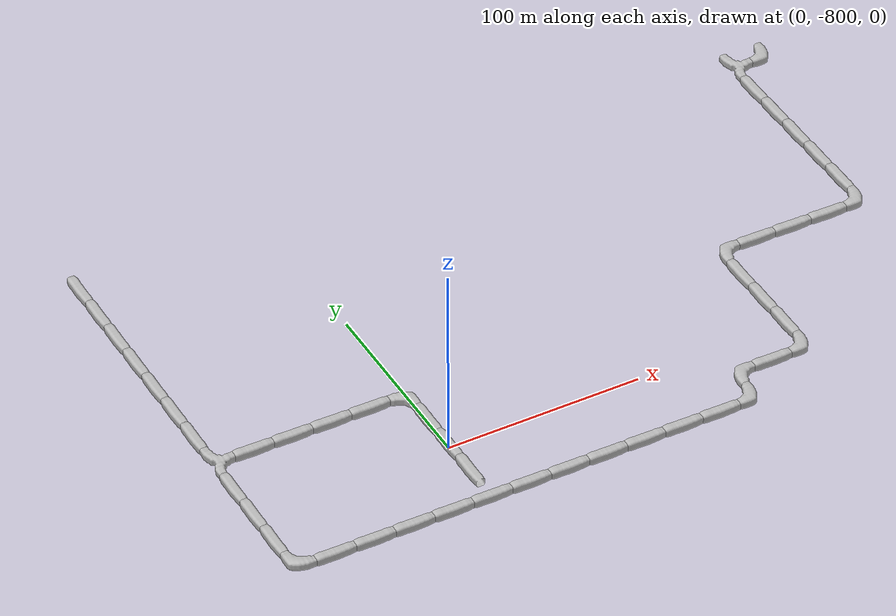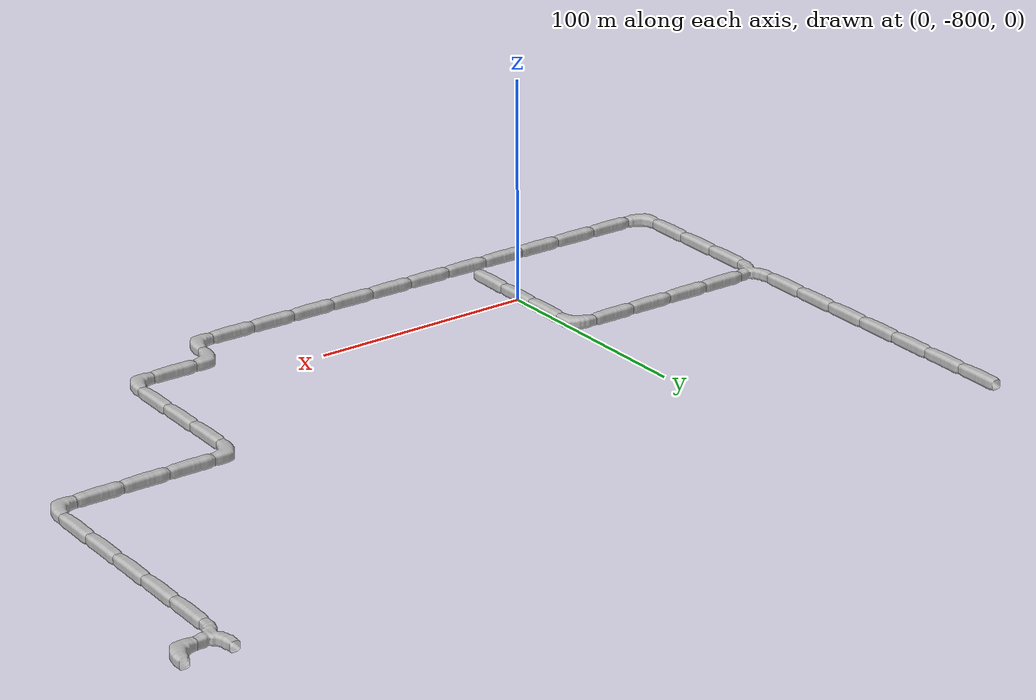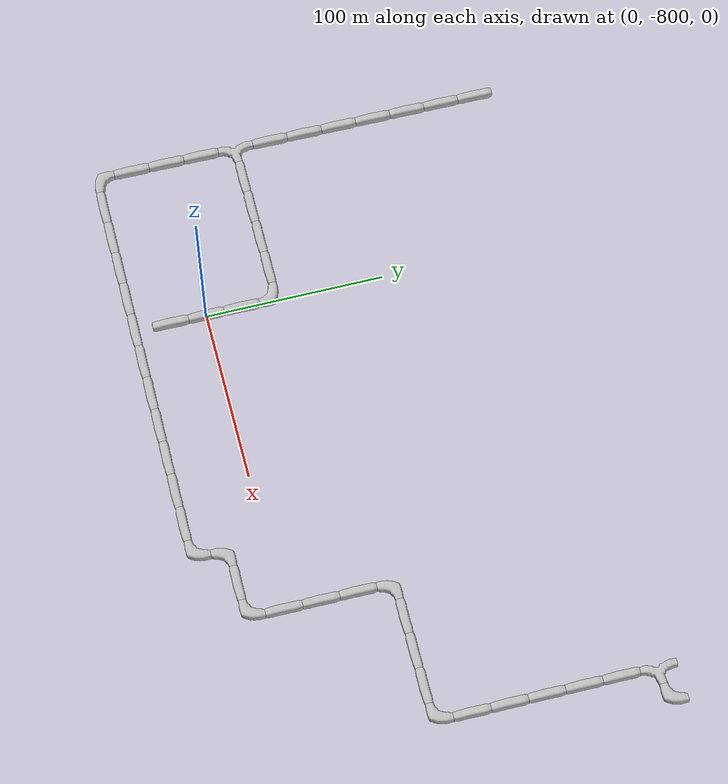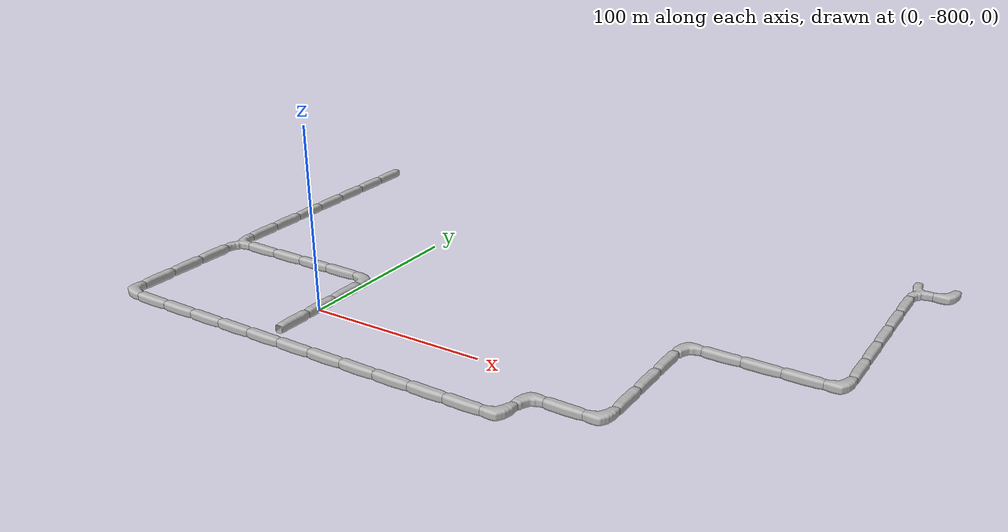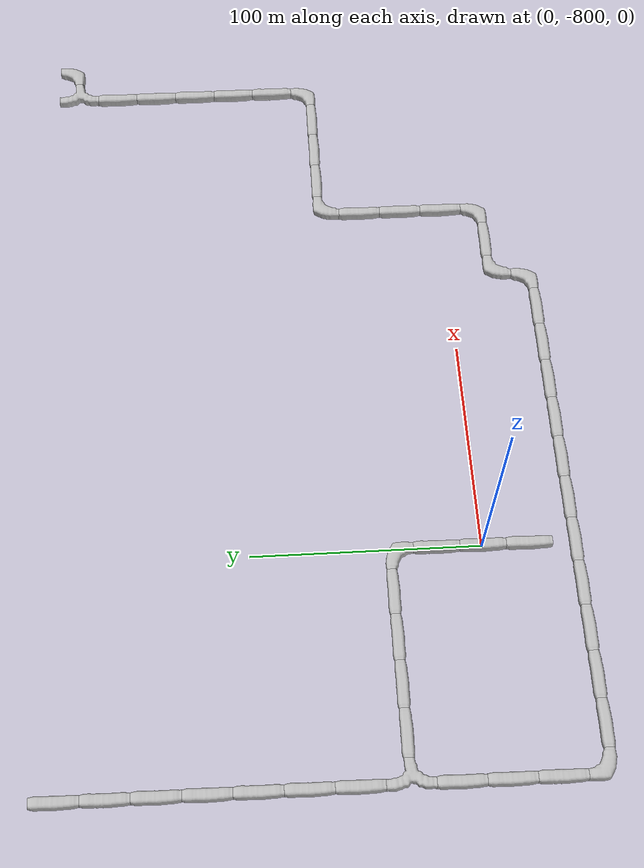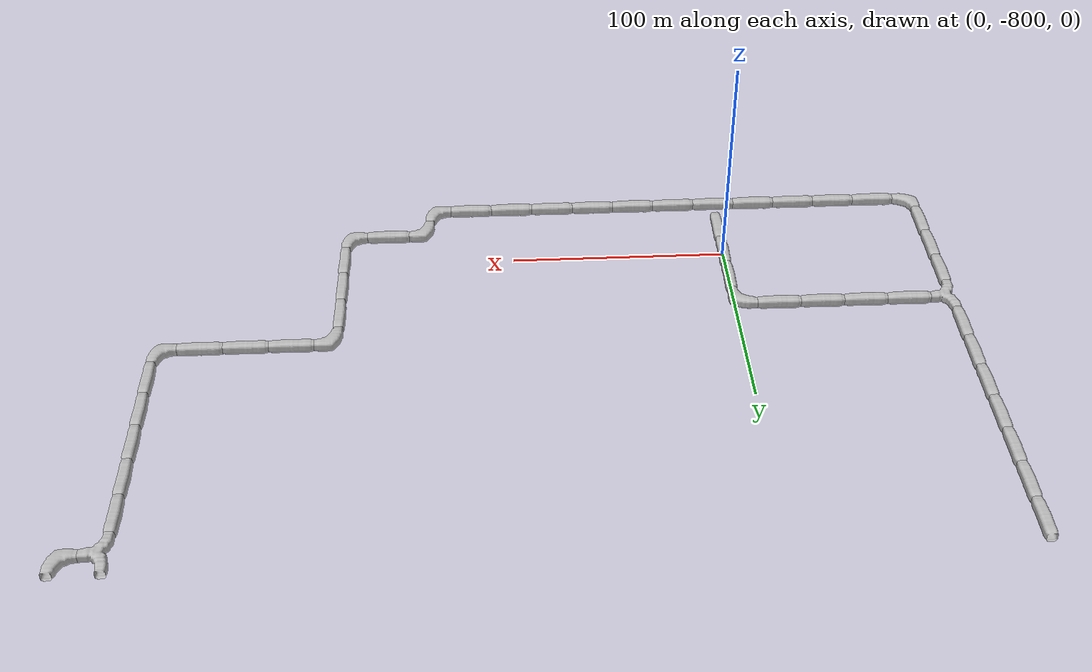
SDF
<sdf version="1.6">
 <world name="cave_8000_32">
  <include>
   <static>true</static>
   <name>cave_13_-31</name>
   <pose>260 -620 0 0 0 -1.5707963267948966</pose>
   <uri>model://cave_3way_20m</uri>
  </include>
  <include>
   <static>true</static>
   <name>cave_14_-31</name>
   <pose>280 -620 0 0 0 1.5707963267948966</pose>
   <uri>model://cave_L_20m</uri>
  </include>
  <include>
   <static>true</static>
   <name>cave_13_-32</name>
   <pose>260 -640 0 0 0 0.0</pose>
   <uri>model://cave_straight_20m</uri>
  </include>
  <include>
   <static>true</static>
   <name>cave_13_-33</name>
   <pose>260 -660 0 0 0 0.0</pose>
   <uri>model://cave_straight_20m</uri>
  </include>
  <include>
   <static>true</static>
   <name>cave_13_-34</name>
   <pose>260 -680 0 0 0 0.0</pose>
   <uri>model://cave_straight_20m</uri>
  </include>
  <include>
   <static>true</static>
   <name>cave_13_-35</name>
   <pose>260 -700 0 0 0 0.0</pose>
   <uri>model://cave_straight_20m</uri>
  </include>
  <include>
   <static>true</static>
   <name>cave_13_-36</name>
   <pose>260 -720 0 0 0 0.0</pose>
   <uri>model://cave_straight_20m</uri>
  </include>
  <include>
   <static>true</static>
   <name>cave_13_-37</name>
   <pose>260 -740 0 0 0 1.5707963267948966</pose>
   <uri>model://cave_L_20m</uri>
  </include>
  <include>
   <static>true</static>
   <name>cave_12_-37</name>
   <pose>240 -740 0 0 0 1.5707963267948966</pose>
   <uri>model://cave_straight_20m</uri>
  </include>
  <include>
   <static>true</static>
   <name>cave_11_-37</name>
   <pose>220 -740 0 0 0 1.5707963267948966</pose>
   <uri>model://cave_straight_20m</uri>
  </include>
  <include>
   <static>true</static>
   <name>cave_10_-37</name>
   <pose>200 -740 0 0 0 1.5707963267948966</pose>
   <uri>model://cave_straight_20m</uri>
  </include>
  <include>
   <static>true</static>
   <name>cave_9_-37</name>
   <pose>180 -740 0 0 0 -1.5707963267948966</pose>
   <uri>model://cave_L_20m</uri>
  </include>
  <include>
   <static>true</static>
   <name>cave_9_-38</name>
   <pose>180 -760 0 0 0 0.0</pose>
   <uri>model://cave_straight_20m</uri>
  </include>
  <include>
   <static>true</static>
   <name>cave_9_-39</name>
   <pose>180 -780 0 0 0 0.0</pose>
   <uri>model://cave_straight_20m</uri>
  </include>
  <include>
   <static>true</static>
   <name>cave_9_-40</name>
   <pose>180 -800 0 0 0 0.0</pose>
   <uri>model://cave_straight_20m</uri>
  </include>
  <include>
   <static>true</static>
   <name>cave_9_-41</name>
   <pose>180 -820 0 0 0 1.5707963267948966</pose>
   <uri>model://cave_L_20m</uri>
  </include>
  <include>
   <static>true</static>
   <name>cave_8_-41</name>
   <pose>160 -820 0 0 0 1.5707963267948966</pose>
   <uri>model://cave_straight_20m</uri>
  </include>
  <include>
   <static>true</static>
   <name>cave_7_-41</name>
   <pose>140 -820 0 0 0 -1.5707963267948966</pose>
   <uri>model://cave_L_20m</uri>
  </include>
  <include>
   <static>true</static>
   <name>cave_7_-42</name>
   <pose>140 -840 0 0 0 1.5707963267948966</pose>
   <uri>model://cave_L_20m</uri>
  </include>
  <include>
   <static>true</static>
   <name>cave_6_-42</name>
   <pose>120 -840 0 0 0 1.5707963267948966</pose>
   <uri>model://cave_straight_20m</uri>
  </include>
  <include>
   <static>true</static>
   <name>cave_5_-42</name>
   <pose>100 -840 0 0 0 1.5707963267948966</pose>
   <uri>model://cave_straight_20m</uri>
  </include>
  <include>
   <static>true</static>
   <name>cave_4_-42</name>
   <pose>80 -840 0 0 0 1.5707963267948966</pose>
   <uri>model://cave_straight_20m</uri>
  </include>
  <include>
   <static>true</static>
   <name>cave_3_-42</name>
   <pose>60 -840 0 0 0 1.5707963267948966</pose>
   <uri>model://cave_straight_20m</uri>
  </include>
  <include>
   <static>true</static>
   <name>cave_2_-42</name>
   <pose>40 -840 0 0 0 1.5707963267948966</pose>
   <uri>model://cave_straight_20m</uri>
  </include>
  <include>
   <static>true</static>
   <name>cave_1_-42</name>
   <pose>20 -840 0 0 0 1.5707963267948966</pose>
   <uri>model://cave_straight_20m</uri>
  </include>
  <include>
   <static>true</static>
   <name>cave_0_-42</name>
   <pose>0 -840 0 0 0 1.5707963267948966</pose>
   <uri>model://cave_straight_20m</uri>
  </include>
  <include>
   <static>true</static>
   <name>cave_-1_-42</name>
   <pose>-20 -840 0 0 0 1.5707963267948966</pose>
   <uri>model://cave_straight_20m</uri>
  </include>
  <include>
   <static>true</static>
   <name>cave_-2_-42</name>
   <pose>-40 -840 0 0 0 1.5707963267948966</pose>
   <uri>model://cave_straight_20m</uri>
  </include>
  <include>
   <static>true</static>
   <name>cave_-3_-42</name>
   <pose>-60 -840 0 0 0 1.5707963267948966</pose>
   <uri>model://cave_straight_20m</uri>
  </include>
  <include>
   <static>true</static>
   <name>cave_-4_-42</name>
   <pose>-80 -840 0 0 0 1.5707963267948966</pose>
   <uri>model://cave_straight_20m</uri>
  </include>
  <include>
   <static>true</static>
   <name>cave_-5_-42</name>
   <pose>-100 -840 0 0 0 0.0</pose>
   <uri>model://cave_L_20m</uri>
  </include>
  <include>
   <static>true</static>
   <name>cave_-5_-41</name>
   <pose>-100 -820 0 0 0 0.0</pose>
   <uri>model://cave_straight_20m</uri>
  </include>
  <include>
   <static>true</static>
   <name>cave_-5_-40</name>
   <pose>-100 -800 0 0 0 0.0</pose>
   <uri>model://cave_straight_20m</uri>
  </include>
  <include>
   <static>true</static>
   <name>cave_-5_-39</name>
   <pose>-100 -780 0 0 0 0.0</pose>
   <uri>model://cave_straight_20m</uri>
  </include>
  <include>
   <static>true</static>
   <name>cave_-5_-38</name>
   <pose>-100 -760 0 0 0 -1.5707963267948966</pose>
   <uri>model://cave_3way_20m</uri>
  </include>
  <include>
   <static>true</static>
   <name>cave_-4_-38</name>
   <pose>-80 -760 0 0 0 1.5707963267948966</pose>
   <uri>model://cave_straight_20m</uri>
  </include>
  <include>
   <static>true</static>
   <name>cave_-3_-38</name>
   <pose>-60 -760 0 0 0 1.5707963267948966</pose>
   <uri>model://cave_straight_20m</uri>
  </include>
  <include>
   <static>true</static>
   <name>cave_-2_-38</name>
   <pose>-40 -760 0 0 0 1.5707963267948966</pose>
   <uri>model://cave_straight_20m</uri>
  </include>
  <include>
   <static>true</static>
   <name>cave_-1_-38</name>
   <pose>-20 -760 0 0 0 1.5707963267948966</pose>
   <uri>model://cave_straight_20m</uri>
  </include>
  <include>
   <static>true</static>
   <name>cave_0_-38</name>
   <pose>0 -760 0 0 0 3.141592653589793</pose>
   <uri>model://cave_L_20m</uri>
  </include>
  <include>
   <static>true</static>
   <name>cave_0_-39</name>
   <pose>0 -780 0 0 0 0.0</pose>
   <uri>model://cave_straight_20m</uri>
  </include>
  <include>
   <static>true</static>
   <name>cave_0_-40</name>
   <pose>0 -800 0 0 0 0.0</pose>
   <uri>model://cave_straight_20m</uri>
  </include>
  <include>
   <static>true</static>
   <name>cave_0_-41</name>
   <pose>0 -820 0 0 0 0.0</pose>
   <uri>model://cave_straight_20m</uri>
  </include>
  <include>
   <static>true</static>
   <name>cave_-5_-37</name>
   <pose>-100 -740 0 0 0 0.0</pose>
   <uri>model://cave_straight_20m</uri>
  </include>
  <include>
   <static>true</static>
   <name>cave_-5_-36</name>
   <pose>-100 -720 0 0 0 0.0</pose>
   <uri>model://cave_straight_20m</uri>
  </include>
  <include>
   <static>true</static>
   <name>cave_-5_-35</name>
   <pose>-100 -700 0 0 0 0.0</pose>
   <uri>model://cave_straight_20m</uri>
  </include>
  <include>
   <static>true</static>
   <name>cave_-5_-34</name>
   <pose>-100 -680 0 0 0 0.0</pose>
   <uri>model://cave_straight_20m</uri>
  </include>
  <include>
   <static>true</static>
   <name>cave_-5_-33</name>
   <pose>-100 -660 0 0 0 0.0</pose>
   <uri>model://cave_straight_20m</uri>
  </include>
  <include>
   <static>true</static>
   <name>cave_-5_-32</name>
   <pose>-100 -640 0 0 0 0.0</pose>
   <uri>model://cave_straight_20m</uri>
  </include>
  <include>
   <static>true</static>
   <name>cave_-5_-31</name>
   <pose>-100 -620 0 0 0 0.0</pose>
   <uri>model://cave_straight_20m</uri>
  </include>
 </world>
</sdf>
